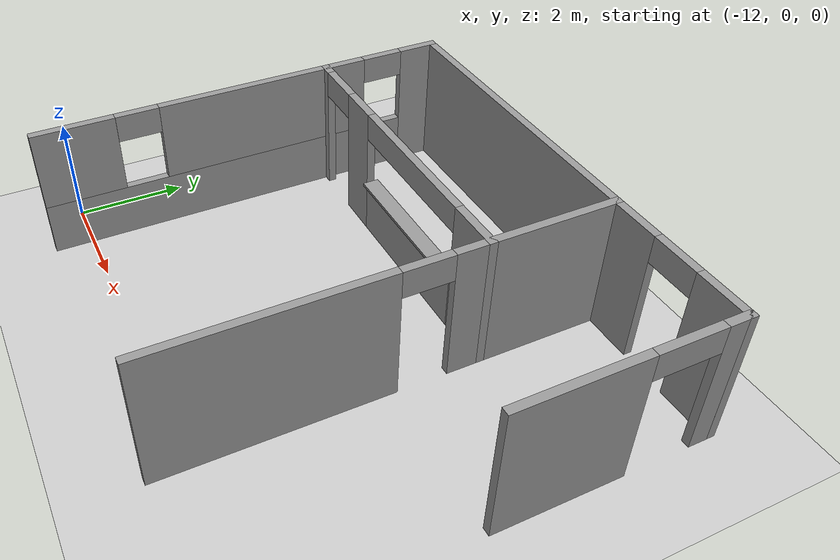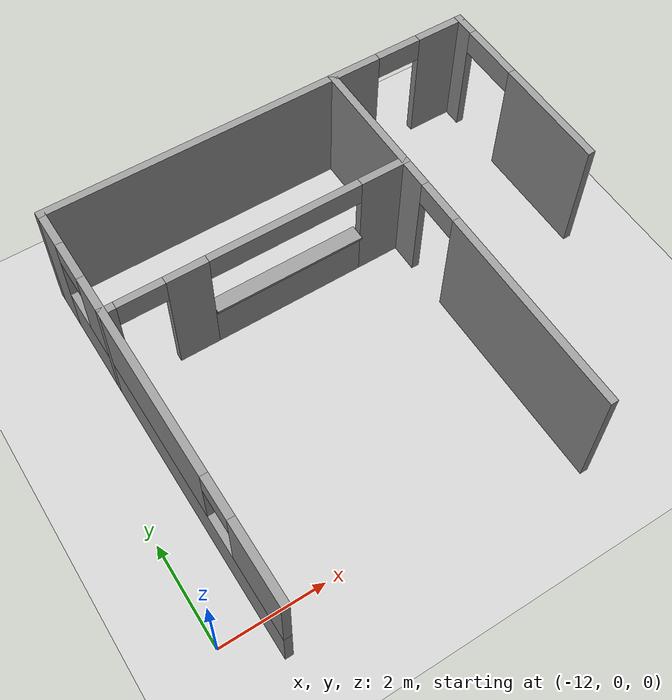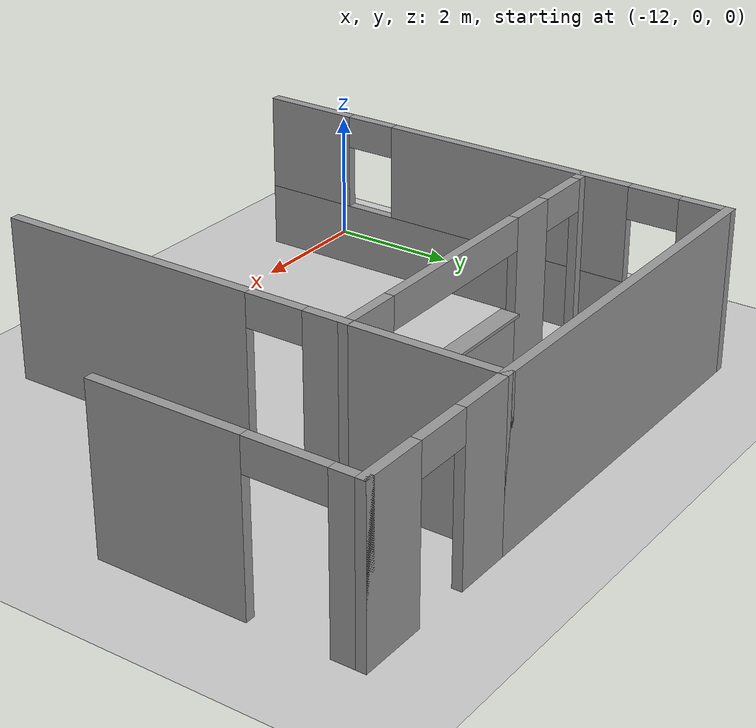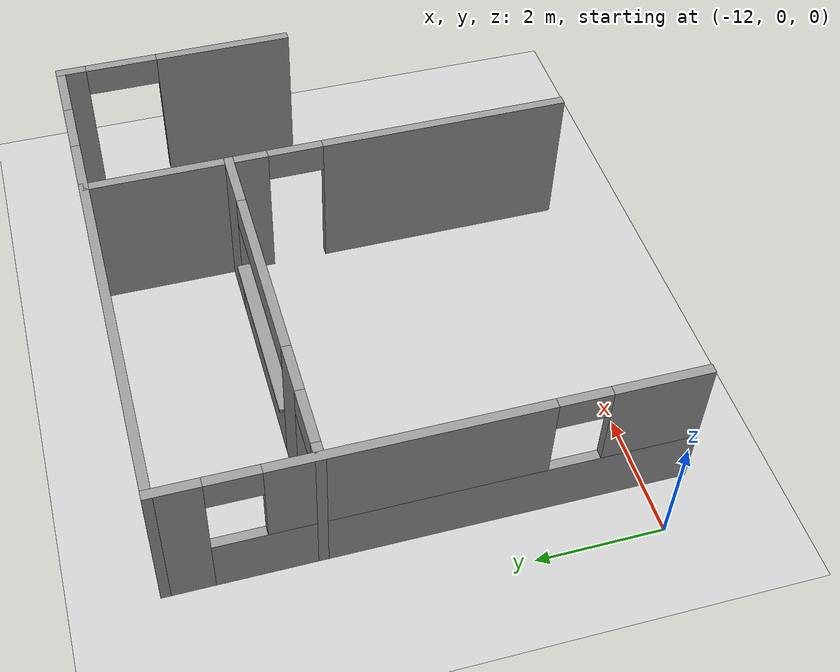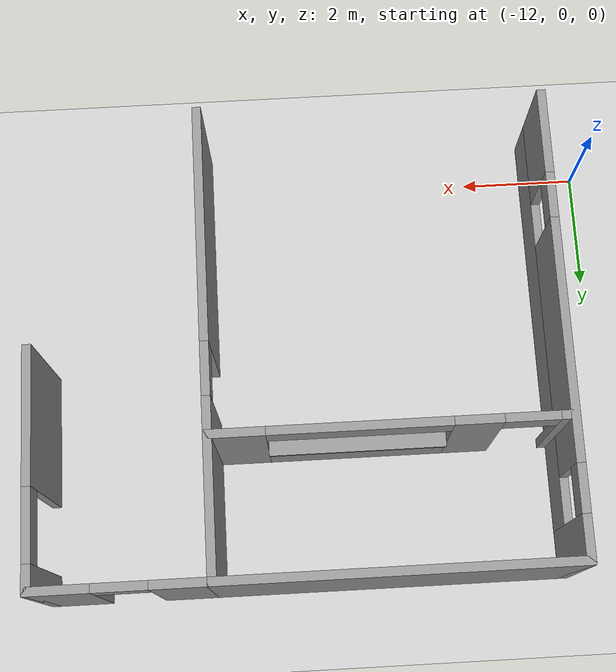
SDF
<sdf version="1.6">
 <world name="default">
  <model name="ground_plane">
   <static>1</static>
   <link name="link">
    <collision name="collision">
     <geometry><plane><normal>0 0 1</normal><size>100 100</size></plane></geometry>
     <surface><friction><ode><mu>100</mu><mu2>50</mu2></ode></friction></surface>
    </collision>
    <visual name="visual">
     <cast_shadows>0</cast_shadows>
     <geometry><plane><normal>0 0 1</normal><size>100 100</size></plane></geometry>
     <material>
      <script><uri>file://media/materials/scripts/gazebo.material</uri><name>Gazebo/Grey</name></script>
     </material>
    </visual>
   </link>
  </model>
  <model name="hospital_v1">
   <link name="Wall_0">
    <pose>-8.2 7.275 0 0 -0 0</pose>
    <visual name="Wall_0_Visual">
     <pose>0 0 1.25 0 -0 0</pose>
     <geometry><box><size>6 0.15 2.5</size></box></geometry>
     <material>
      <script><uri>file://media/materials/scripts/gazebo.material</uri><name>Gazebo/Grey</name></script>
      <ambient>1 1 1 1</ambient>
     </material>
     <meta><layer>0</layer></meta>
    </visual>
    <collision name="Wall_0_Collision">
     <pose>0 0 1.25 0 -0 0</pose>
     <geometry><box><size>6 0.15 2.5</size></box></geometry>
     <surface>
      <friction>
       <ode><mu>1</mu><mu2>1</mu2><fdir1>0 0 0</fdir1><slip1>0</slip1><slip2>0</slip2></ode>
       <torsional>
        <coefficient>1</coefficient>
        <patch_radius>0</patch_radius>
        <surface_radius>0</surface_radius>
        <use_patch_radius>1</use_patch_radius>
        <ode><slip>0</slip></ode>
       </torsional>
      </friction>
      <bounce><restitution_coefficient>0</restitution_coefficient><threshold>1e+06</threshold></bounce>
      <contact>
       <collide_without_contact>0</collide_without_contact>
       <collide_without_contact_bitmask>1</collide_without_contact_bitmask>
       <collide_bitmask>1</collide_bitmask>
       <ode>
        <soft_cfm>0</soft_cfm>
        <soft_erp>0.2</soft_erp>
        <kp>1e+13</kp>
        <kd>1</kd>
        <max_vel>0.01</max_vel>
        <min_depth>0</min_depth>
       </ode>
       <bullet>
        <split_impulse>1</split_impulse>
        <split_impulse_penetration_threshold>-0.01</split_impulse_penetration_threshold>
        <soft_cfm>0</soft_cfm>
        <soft_erp>0.2</soft_erp>
        <kp>1e+13</kp>
        <kd>1</kd>
       </bullet>
      </contact>
     </surface>
    </collision>
   </link>
   <link name="Wall_0_clone">
    <pose>-8.2 4.975 0 0 -0 0</pose>
    <inertial>
     <mass>1</mass>
     <inertia><ixx>1</ixx><ixy>0</ixy><ixz>0</ixz><iyy>1</iyy><iyz>0</iyz><izz>1</izz></inertia>
    </inertial>
    <visual name="ModelPreview_4::Wall_0_clone::visual_1">
     <pose>0.5 0 0.5 0 -0 0</pose>
     <geometry><box><size>3 0.15 1</size></box></geometry>
     <material>
      <script><uri>file://media/materials/scripts/gazebo.material</uri><name>Gazebo/Grey</name></script>
      <ambient>1 1 1 1</ambient>
      <shader type="vertex"><normal_map>__default__</normal_map></shader>
      <diffuse>0.7 0.7 0.7 1</diffuse>
      <specular>0.01 0.01 0.01 1</specular>
      <emissive>0 0 0 1</emissive>
     </material>
     <meta><layer>0</layer></meta>
    </visual>
    <visual name="ModelPreview_10::Wall_0_clone::visual_6">
     <pose>0.5 0 1.025 0 -0 0</pose>
     <geometry><box><size>3 0.3 0.05</size></box></geometry>
     <material>
      <script><uri>file://media/materials/scripts/gazebo.material</uri><name>Gazebo/Grey</name></script>
      <ambient>1 1 1 1</ambient>
      <shader type="vertex"><normal_map>__default__</normal_map></shader>
      <diffuse>0.7 0.7 0.7 1</diffuse>
      <specular>0.01 0.01 0.01 1</specular>
      <emissive>0 0 0 1</emissive>
     </material>
     <meta><layer>0</layer></meta>
    </visual>
    <visual name="ModelPreview_4::Wall_0_clone::visual_3">
     <pose>-1.4 0 1.25 0 -0 0</pose>
     <geometry><box><size>0.8 0.15 2.5</size></box></geometry>
     <material>
      <script><uri>file://media/materials/scripts/gazebo.material</uri><name>Gazebo/Grey</name></script>
      <ambient>1 1 1 1</ambient>
      <shader type="vertex"><normal_map>__default__</normal_map></shader>
      <diffuse>0.7 0.7 0.7 1</diffuse>
      <specular>0.01 0.01 0.01 1</specular>
      <emissive>0 0 0 1</emissive>
     </material>
     <meta><layer>0</layer></meta>
    </visual>
    <visual name="ModelPreview_4::Wall_0_clone::visual_4">
     <pose>-2.25 0 2.25 0 -0 0</pose>
     <geometry><box><size>0.9 0.15 0.5</size></box></geometry>
     <material>
      <script><uri>file://media/materials/scripts/gazebo.material</uri><name>Gazebo/Grey</name></script>
      <ambient>1 1 1 1</ambient>
      <shader type="vertex"><normal_map>__default__</normal_map></shader>
      <diffuse>0.7 0.7 0.7 1</diffuse>
      <specular>0.01 0.01 0.01 1</specular>
      <emissive>0 0 0 1</emissive>
     </material>
     <meta><layer>0</layer></meta>
    </visual>
    <visual name="ModelPreview_4::Wall_0_clone::visual_5">
     <pose>-2.85 0 1.25 0 -0 0</pose>
     <geometry><box><size>0.3 0.15 2.5</size></box></geometry>
     <material>
      <script><uri>file://media/materials/scripts/gazebo.material</uri><name>Gazebo/Grey</name></script>
      <ambient>1 1 1 1</ambient>
      <shader type="vertex"><normal_map>__default__</normal_map></shader>
      <diffuse>0.7 0.7 0.7 1</diffuse>
      <specular>0.01 0.01 0.01 1</specular>
      <emissive>0 0 0 1</emissive>
     </material>
     <meta><layer>0</layer></meta>
    </visual>
    <visual name="ModelPreview_4::Wall_0_clone::visual_2">
     <pose>0.5 0 2.25 0 -0 0</pose>
     <geometry><box><size>3 0.15 0.5</size></box></geometry>
     <material>
      <script><uri>file://media/materials/scripts/gazebo.material</uri><name>Gazebo/Grey</name></script>
      <ambient>1 1 1 1</ambient>
      <shader type="vertex"><normal_map>__default__</normal_map></shader>
      <diffuse>0.7 0.7 0.7 1</diffuse>
      <specular>0.01 0.01 0.01 1</specular>
      <emissive>0 0 0 1</emissive>
     </material>
     <meta><layer>0</layer></meta>
    </visual>
    <visual name="Wall_0_Visual">
     <pose>2.5 0 1.25 0 -0 0</pose>
     <geometry><box><size>1 0.15 2.5</size></box></geometry>
     <material>
      <script><uri>file://media/materials/scripts/gazebo.material</uri><name>Gazebo/Grey</name></script>
      <ambient>1 1 1 1</ambient>
      <shader type="vertex"><normal_map>__default__</normal_map></shader>
      <diffuse>0.7 0.7 0.7 1</diffuse>
      <specular>0.01 0.01 0.01 1</specular>
      <emissive>0 0 0 1</emissive>
     </material>
     <meta><layer>0</layer></meta>
    </visual>
    <collision name="collision_3">
     <pose>-1.4 0 1.25 0 -0 0</pose>
     <geometry><box><size>0.8 0.15 2.5</size></box></geometry>
     <surface>
      <friction>
       <ode><mu>1</mu><mu2>1</mu2><fdir1>0 0 0</fdir1><slip1>0</slip1><slip2>0</slip2></ode>
       <torsional>
        <coefficient>1</coefficient>
        <patch_radius>0</patch_radius>
        <surface_radius>0</surface_radius>
        <use_patch_radius>1</use_patch_radius>
        <ode><slip>0</slip></ode>
       </torsional>
      </friction>
      <bounce><restitution_coefficient>0</restitution_coefficient><threshold>1e+06</threshold></bounce>
      <contact>
       <collide_without_contact>0</collide_without_contact>
       <collide_without_contact_bitmask>1</collide_without_contact_bitmask>
       <collide_bitmask>1</collide_bitmask>
       <ode>
        <soft_cfm>0</soft_cfm>
        <soft_erp>0.2</soft_erp>
        <kp>1e+13</kp>
        <kd>1</kd>
        <max_vel>0.01</max_vel>
        <min_depth>0</min_depth>
       </ode>
       <bullet>
        <split_impulse>1</split_impulse>
        <split_impulse_penetration_threshold>-0.01</split_impulse_penetration_threshold>
        <soft_cfm>0</soft_cfm>
        <soft_erp>0.2</soft_erp>
        <kp>1e+13</kp>
        <kd>1</kd>
       </bullet>
      </contact>
     </surface>
    </collision>
    <collision name="collision_1">
     <pose>0.5 0 0.5 0 -0 0</pose>
     <geometry><box><size>3 0.15 1</size></box></geometry>
     <surface>
      <friction>
       <ode><mu>1</mu><mu2>1</mu2><fdir1>0 0 0</fdir1><slip1>0</slip1><slip2>0</slip2></ode>
       <torsional>
        <coefficient>1</coefficient>
        <patch_radius>0</patch_radius>
        <surface_radius>0</surface_radius>
        <use_patch_radius>1</use_patch_radius>
        <ode><slip>0</slip></ode>
       </torsional>
      </friction>
      <bounce><restitution_coefficient>0</restitution_coefficient><threshold>1e+06</threshold></bounce>
      <contact>
       <collide_without_contact>0</collide_without_contact>
       <collide_without_contact_bitmask>1</collide_without_contact_bitmask>
       <collide_bitmask>1</collide_bitmask>
       <ode>
        <soft_cfm>0</soft_cfm>
        <soft_erp>0.2</soft_erp>
        <kp>1e+13</kp>
        <kd>1</kd>
        <max_vel>0.01</max_vel>
        <min_depth>0</min_depth>
       </ode>
       <bullet>
        <split_impulse>1</split_impulse>
        <split_impulse_penetration_threshold>-0.01</split_impulse_penetration_threshold>
        <soft_cfm>0</soft_cfm>
        <soft_erp>0.2</soft_erp>
        <kp>1e+13</kp>
        <kd>1</kd>
       </bullet>
      </contact>
     </surface>
    </collision>
    <collision name="collision_4">
     <pose>-2.25 0 2.25 0 -0 0</pose>
     <geometry><box><size>0.9 0.15 0.5</size></box></geometry>
     <surface>
      <friction>
       <ode><mu>1</mu><mu2>1</mu2><fdir1>0 0 0</fdir1><slip1>0</slip1><slip2>0</slip2></ode>
       <torsional>
        <coefficient>1</coefficient>
        <patch_radius>0</patch_radius>
        <surface_radius>0</surface_radius>
        <use_patch_radius>1</use_patch_radius>
        <ode><slip>0</slip></ode>
       </torsional>
      </friction>
      <bounce><restitution_coefficient>0</restitution_coefficient><threshold>1e+06</threshold></bounce>
      <contact>
       <collide_without_contact>0</collide_without_contact>
       <collide_without_contact_bitmask>1</collide_without_contact_bitmask>
       <collide_bitmask>1</collide_bitmask>
       <ode>
        <soft_cfm>0</soft_cfm>
        <soft_erp>0.2</soft_erp>
        <kp>1e+13</kp>
        <kd>1</kd>
        <max_vel>0.01</max_vel>
        <min_depth>0</min_depth>
       </ode>
       <bullet>
        <split_impulse>1</split_impulse>
        <split_impulse_penetration_threshold>-0.01</split_impulse_penetration_threshold>
        <soft_cfm>0</soft_cfm>
        <soft_erp>0.2</soft_erp>
        <kp>1e+13</kp>
        <kd>1</kd>
       </bullet>
      </contact>
     </surface>
    </collision>
    <collision name="collision_5">
     <pose>-2.85 0 1.25 0 -0 0</pose>
     <geometry><box><size>0.3 0.15 2.5</size></box></geometry>
     <surface>
      <friction>
       <ode><mu>1</mu><mu2>1</mu2><fdir1>0 0 0</fdir1><slip1>0</slip1><slip2>0</slip2></ode>
       <torsional>
        <coefficient>1</coefficient>
        <patch_radius>0</patch_radius>
        <surface_radius>0</surface_radius>
        <use_patch_radius>1</use_patch_radius>
        <ode><slip>0</slip></ode>
       </torsional>
      </friction>
      <bounce><restitution_coefficient>0</restitution_coefficient><threshold>1e+06</threshold></bounce>
      <contact>
       <collide_without_contact>0</collide_without_contact>
       <collide_without_contact_bitmask>1</collide_without_contact_bitmask>
       <collide_bitmask>1</collide_bitmask>
       <ode>
        <soft_cfm>0</soft_cfm>
        <soft_erp>0.2</soft_erp>
        <kp>1e+13</kp>
        <kd>1</kd>
        <max_vel>0.01</max_vel>
        <min_depth>0</min_depth>
       </ode>
       <bullet>
        <split_impulse>1</split_impulse>
        <split_impulse_penetration_threshold>-0.01</split_impulse_penetration_threshold>
        <soft_cfm>0</soft_cfm>
        <soft_erp>0.2</soft_erp>
        <kp>1e+13</kp>
        <kd>1</kd>
       </bullet>
      </contact>
     </surface>
    </collision>
    <collision name="collision_2">
     <pose>0.5 0 2.25 0 -0 0</pose>
     <geometry><box><size>3 0.15 0.5</size></box></geometry>
     <surface>
      <friction>
       <ode><mu>1</mu><mu2>1</mu2><fdir1>0 0 0</fdir1><slip1>0</slip1><slip2>0</slip2></ode>
       <torsional>
        <coefficient>1</coefficient>
        <patch_radius>0</patch_radius>
        <surface_radius>0</surface_radius>
        <use_patch_radius>1</use_patch_radius>
        <ode><slip>0</slip></ode>
       </torsional>
      </friction>
      <bounce><restitution_coefficient>0</restitution_coefficient><threshold>1e+06</threshold></bounce>
      <contact>
       <collide_without_contact>0</collide_without_contact>
       <collide_without_contact_bitmask>1</collide_without_contact_bitmask>
       <collide_bitmask>1</collide_bitmask>
       <ode>
        <soft_cfm>0</soft_cfm>
        <soft_erp>0.2</soft_erp>
        <kp>1e+13</kp>
        <kd>1</kd>
        <max_vel>0.01</max_vel>
        <min_depth>0</min_depth>
       </ode>
       <bullet>
        <split_impulse>1</split_impulse>
        <split_impulse_penetration_threshold>-0.01</split_impulse_penetration_threshold>
        <soft_cfm>0</soft_cfm>
        <soft_erp>0.2</soft_erp>
        <kp>1e+13</kp>
        <kd>1</kd>
       </bullet>
      </contact>
     </surface>
    </collision>
    <collision name="collision_6">
     <pose>0.5 0 1.025 0 -0 0</pose>
     <geometry><box><size>3 0.3 0.05</size></box></geometry>
     <surface>
      <friction>
       <ode><mu>1</mu><mu2>1</mu2><fdir1>0 0 0</fdir1><slip1>0</slip1><slip2>0</slip2></ode>
       <torsional>
        <coefficient>1</coefficient>
        <patch_radius>0</patch_radius>
        <surface_radius>0</surface_radius>
        <use_patch_radius>1</use_patch_radius>
        <ode><slip>0</slip></ode>
       </torsional>
      </friction>
      <bounce><restitution_coefficient>0</restitution_coefficient><threshold>1e+06</threshold></bounce>
      <contact>
       <collide_without_contact>0</collide_without_contact>
       <collide_without_contact_bitmask>1</collide_without_contact_bitmask>
       <collide_bitmask>1</collide_bitmask>
       <ode>
        <soft_cfm>0</soft_cfm>
        <soft_erp>0.2</soft_erp>
        <kp>1e+13</kp>
        <kd>1</kd>
        <max_vel>0.01</max_vel>
        <min_depth>0</min_depth>
       </ode>
       <bullet>
        <split_impulse>1</split_impulse>
        <split_impulse_penetration_threshold>-0.01</split_impulse_penetration_threshold>
        <soft_cfm>0</soft_cfm>
        <soft_erp>0.2</soft_erp>
        <kp>1e+13</kp>
        <kd>1</kd>
       </bullet>
      </contact>
     </surface>
    </collision>
    <collision name="Wall_0_Collision">
     <pose>2.5 0 1.25 0 -0 0</pose>
     <geometry><box><size>1 0.15 2.5</size></box></geometry>
     <surface>
      <friction>
       <ode><mu>1</mu><mu2>1</mu2><fdir1>0 0 0</fdir1><slip1>0</slip1><slip2>0</slip2></ode>
       <torsional>
        <coefficient>1</coefficient>
        <patch_radius>0</patch_radius>
        <surface_radius>0</surface_radius>
        <use_patch_radius>1</use_patch_radius>
        <ode><slip>0</slip></ode>
       </torsional>
      </friction>
      <bounce><restitution_coefficient>0</restitution_coefficient><threshold>1e+06</threshold></bounce>
      <contact>
       <collide_without_contact>0</collide_without_contact>
       <collide_without_contact_bitmask>1</collide_without_contact_bitmask>
       <collide_bitmask>1</collide_bitmask>
       <ode>
        <soft_cfm>0</soft_cfm>
        <soft_erp>0.2</soft_erp>
        <kp>1e+13</kp>
        <kd>1</kd>
        <max_vel>0.01</max_vel>
        <min_depth>0</min_depth>
       </ode>
       <bullet>
        <split_impulse>1</split_impulse>
        <split_impulse_penetration_threshold>-0.01</split_impulse_penetration_threshold>
        <soft_cfm>0</soft_cfm>
        <soft_erp>0.2</soft_erp>
        <kp>1e+13</kp>
        <kd>1</kd>
       </bullet>
      </contact>
     </surface>
    </collision>
   </link>
   <link name="Wall_12">
    <pose>-2.425 5.35 0 0 -0 1.5708</pose>
    <visual name="Wall_12_Visual_0">
     <pose>-0.85 0 1.25 0 -0 0</pose>
     <geometry><box><size>2.3 0.15 2.5</size></box></geometry>
     <material>
      <script><uri>file://media/materials/scripts/gazebo.material</uri><name>Gazebo/Grey</name></script>
      <ambient>1 1 1 1</ambient>
     </material>
     <meta><layer>0</layer></meta>
    </visual>
    <visual name="Wall_12_Visual_2">
     <pose>0.9 0 2.25 0 -0 0</pose>
     <geometry><box><size>1.2 0.15 0.5</size></box></geometry>
     <material>
      <script><uri>file://media/materials/scripts/gazebo.material</uri><name>Gazebo/Grey</name></script>
      <ambient>1 1 1 1</ambient>
     </material>
     <meta><layer>0</layer></meta>
    </visual>
    <visual name="Wall_12_Visual_1">
     <pose>1.75 0 1.25 0 -0 0</pose>
     <geometry><box><size>0.5 0.15 2.5</size></box></geometry>
     <material>
      <script><uri>file://media/materials/scripts/gazebo.material</uri><name>Gazebo/Grey</name></script>
      <ambient>1 1 1 1</ambient>
     </material>
     <meta><layer>0</layer></meta>
    </visual>
    <collision name="Wall_12_Collision_1">
     <pose>1.75 0 1.25 0 -0 0</pose>
     <geometry><box><size>0.5 0.15 2.5</size></box></geometry>
     <surface>
      <friction>
       <ode><mu>1</mu><mu2>1</mu2><fdir1>0 0 0</fdir1><slip1>0</slip1><slip2>0</slip2></ode>
       <torsional>
        <coefficient>1</coefficient>
        <patch_radius>0</patch_radius>
        <surface_radius>0</surface_radius>
        <use_patch_radius>1</use_patch_radius>
        <ode><slip>0</slip></ode>
       </torsional>
      </friction>
      <bounce><restitution_coefficient>0</restitution_coefficient><threshold>1e+06</threshold></bounce>
      <contact>
       <collide_without_contact>0</collide_without_contact>
       <collide_without_contact_bitmask>1</collide_without_contact_bitmask>
       <collide_bitmask>1</collide_bitmask>
       <ode>
        <soft_cfm>0</soft_cfm>
        <soft_erp>0.2</soft_erp>
        <kp>1e+13</kp>
        <kd>1</kd>
        <max_vel>0.01</max_vel>
        <min_depth>0</min_depth>
       </ode>
       <bullet>
        <split_impulse>1</split_impulse>
        <split_impulse_penetration_threshold>-0.01</split_impulse_penetration_threshold>
        <soft_cfm>0</soft_cfm>
        <soft_erp>0.2</soft_erp>
        <kp>1e+13</kp>
        <kd>1</kd>
       </bullet>
      </contact>
     </surface>
    </collision>
    <collision name="Wall_12_Collision_2">
     <pose>0.9 0 2.25 0 -0 0</pose>
     <geometry><box><size>1.2 0.15 0.5</size></box></geometry>
     <surface>
      <friction>
       <ode><mu>1</mu><mu2>1</mu2><fdir1>0 0 0</fdir1><slip1>0</slip1><slip2>0</slip2></ode>
       <torsional>
        <coefficient>1</coefficient>
        <patch_radius>0</patch_radius>
        <surface_radius>0</surface_radius>
        <use_patch_radius>1</use_patch_radius>
        <ode><slip>0</slip></ode>
       </torsional>
      </friction>
      <bounce><restitution_coefficient>0</restitution_coefficient><threshold>1e+06</threshold></bounce>
      <contact>
       <collide_without_contact>0</collide_without_contact>
       <collide_without_contact_bitmask>1</collide_without_contact_bitmask>
       <collide_bitmask>1</collide_bitmask>
       <ode>
        <soft_cfm>0</soft_cfm>
        <soft_erp>0.2</soft_erp>
        <kp>1e+13</kp>
        <kd>1</kd>
        <max_vel>0.01</max_vel>
        <min_depth>0</min_depth>
       </ode>
       <bullet>
        <split_impulse>1</split_impulse>
        <split_impulse_penetration_threshold>-0.01</split_impulse_penetration_threshold>
        <soft_cfm>0</soft_cfm>
        <soft_erp>0.2</soft_erp>
        <kp>1e+13</kp>
        <kd>1</kd>
       </bullet>
      </contact>
     </surface>
    </collision>
    <collision name="Wall_12_Collision_0">
     <pose>-0.85 0 1.25 0 -0 0</pose>
     <geometry><box><size>2.3 0.15 2.5</size></box></geometry>
     <surface>
      <friction>
       <ode><mu>1</mu><mu2>1</mu2><fdir1>0 0 0</fdir1><slip1>0</slip1><slip2>0</slip2></ode>
       <torsional>
        <coefficient>1</coefficient>
        <patch_radius>0</patch_radius>
        <surface_radius>0</surface_radius>
        <use_patch_radius>1</use_patch_radius>
        <ode><slip>0</slip></ode>
       </torsional>
      </friction>
      <bounce><restitution_coefficient>0</restitution_coefficient><threshold>1e+06</threshold></bounce>
      <contact>
       <collide_without_contact>0</collide_without_contact>
       <collide_without_contact_bitmask>1</collide_without_contact_bitmask>
       <collide_bitmask>1</collide_bitmask>
       <ode>
        <soft_cfm>0</soft_cfm>
        <soft_erp>0.2</soft_erp>
        <kp>1e+13</kp>
        <kd>1</kd>
        <max_vel>0.01</max_vel>
        <min_depth>0</min_depth>
       </ode>
       <bullet>
        <split_impulse>1</split_impulse>
        <split_impulse_penetration_threshold>-0.01</split_impulse_penetration_threshold>
        <soft_cfm>0</soft_cfm>
        <soft_erp>0.2</soft_erp>
        <kp>1e+13</kp>
        <kd>1</kd>
       </bullet>
      </contact>
     </surface>
    </collision>
   </link>
   <link name="Wall_4">
    <pose>-11.125 3.35 0 0 0 -1.5708</pose>
    <inertial>
     <mass>1</mass>
     <inertia><ixx>1</ixx><ixy>0</ixy><ixz>0</ixz><iyy>1</iyy><iyz>0</iyz><izz>1</izz></inertia>
    </inertial>
    <visual name="Wall_4_Visual_4">
     <pose>-2.8 0 2.25 0 -0 0</pose>
     <geometry><box><size>0.8 0.15 0.5</size></box></geometry>
     <material>
      <script><uri>file://media/materials/scripts/gazebo.material</uri><name>Gazebo/Grey</name></script>
      <ambient>1 1 1 1</ambient>
      <shader type="vertex"><normal_map>__default__</normal_map></shader>
      <diffuse>0.7 0.7 0.7 1</diffuse>
      <specular>0.01 0.01 0.01 1</specular>
      <emissive>0 0 0 1</emissive>
     </material>
     <meta><layer>0</layer></meta>
    </visual>
    <visual name="Wall_4_Visual_0">
     <pose>-3.6 0 1.25 0 -0 0</pose>
     <geometry><box><size>0.8 0.15 2.5</size></box></geometry>
     <material>
      <script><uri>file://media/materials/scripts/gazebo.material</uri><name>Gazebo/Grey</name></script>
      <ambient>1 1 1 1</ambient>
      <shader type="vertex"><normal_map>__default__</normal_map></shader>
      <diffuse>0.7 0.7 0.7 1</diffuse>
      <specular>0.01 0.01 0.01 1</specular>
      <emissive>0 0 0 1</emissive>
     </material>
     <meta><layer>0</layer></meta>
    </visual>
    <visual name="Wall_4_Visual_3">
     <pose>3.25 0 1.75 0 -0 0</pose>
     <geometry><box><size>1.5 0.15 1.5</size></box></geometry>
     <material>
      <script><uri>file://media/materials/scripts/gazebo.material</uri><name>Gazebo/Grey</name></script>
      <ambient>1 1 1 1</ambient>
      <shader type="vertex"><normal_map>__default__</normal_map></shader>
      <diffuse>0.7 0.7 0.7 1</diffuse>
      <specular>0.01 0.01 0.01 1</specular>
      <emissive>0 0 0 1</emissive>
     </material>
     <meta><layer>0</layer></meta>
    </visual>
    <visual name="Wall_4_Visual_1">
     <pose>0.4 0 0.5 0 -0 0</pose>
     <geometry><box><size>7.2 0.15 1</size></box></geometry>
     <material>
      <script><uri>file://media/materials/scripts/gazebo.material</uri><name>Gazebo/Grey</name></script>
      <ambient>1 1 1 1</ambient>
      <shader type="vertex"><normal_map>__default__</normal_map></shader>
      <diffuse>0.7 0.7 0.7 1</diffuse>
      <specular>0.01 0.01 0.01 1</specular>
      <emissive>0 0 0 1</emissive>
     </material>
     <meta><layer>0</layer></meta>
    </visual>
    <visual name="Wall_4_Visual_2">
     <pose>-0.35 0 1.75 0 -0 0</pose>
     <geometry><box><size>4.1 0.15 1.5</size></box></geometry>
     <material>
      <script><uri>file://media/materials/scripts/gazebo.material</uri><name>Gazebo/Grey</name></script>
      <ambient>1 1 1 1</ambient>
      <shader type="vertex"><normal_map>__default__</normal_map></shader>
      <diffuse>0.7 0.7 0.7 1</diffuse>
      <specular>0.01 0.01 0.01 1</specular>
      <emissive>0 0 0 1</emissive>
     </material>
     <meta><layer>0</layer></meta>
    </visual>
    <visual name="Wall_4_Visual_5">
     <pose>2.1 0 2.25 0 -0 0</pose>
     <geometry><box><size>0.8 0.15 0.5</size></box></geometry>
     <material>
      <script><uri>file://media/materials/scripts/gazebo.material</uri><name>Gazebo/Grey</name></script>
      <ambient>1 1 1 1</ambient>
      <shader type="vertex"><normal_map>__default__</normal_map></shader>
      <diffuse>0.7 0.7 0.7 1</diffuse>
      <specular>0.01 0.01 0.01 1</specular>
      <emissive>0 0 0 1</emissive>
     </material>
     <meta><layer>0</layer></meta>
    </visual>
    <collision name="Wall_4_Collision_3">
     <pose>3.25 0 1.75 0 -0 0</pose>
     <geometry><box><size>1.5 0.15 1.5</size></box></geometry>
     <surface>
      <friction>
       <ode><mu>1</mu><mu2>1</mu2><fdir1>0 0 0</fdir1><slip1>0</slip1><slip2>0</slip2></ode>
       <torsional>
        <coefficient>1</coefficient>
        <patch_radius>0</patch_radius>
        <surface_radius>0</surface_radius>
        <use_patch_radius>1</use_patch_radius>
        <ode><slip>0</slip></ode>
       </torsional>
      </friction>
      <bounce><restitution_coefficient>0</restitution_coefficient><threshold>1e+06</threshold></bounce>
      <contact>
       <collide_without_contact>0</collide_without_contact>
       <collide_without_contact_bitmask>1</collide_without_contact_bitmask>
       <collide_bitmask>1</collide_bitmask>
       <ode>
        <soft_cfm>0</soft_cfm>
        <soft_erp>0.2</soft_erp>
        <kp>1e+13</kp>
        <kd>1</kd>
        <max_vel>0.01</max_vel>
        <min_depth>0</min_depth>
       </ode>
       <bullet>
        <split_impulse>1</split_impulse>
        <split_impulse_penetration_threshold>-0.01</split_impulse_penetration_threshold>
        <soft_cfm>0</soft_cfm>
        <soft_erp>0.2</soft_erp>
        <kp>1e+13</kp>
        <kd>1</kd>
       </bullet>
      </contact>
     </surface>
    </collision>
    <collision name="Wall_4_Collision_4">
     <pose>-2.8 0 2.25 0 -0 0</pose>
     <geometry><box><size>0.8 0.15 0.5</size></box></geometry>
     <surface>
      <friction>
       <ode><mu>1</mu><mu2>1</mu2><fdir1>0 0 0</fdir1><slip1>0</slip1><slip2>0</slip2></ode>
       <torsional>
        <coefficient>1</coefficient>
        <patch_radius>0</patch_radius>
        <surface_radius>0</surface_radius>
        <use_patch_radius>1</use_patch_radius>
        <ode><slip>0</slip></ode>
       </torsional>
      </friction>
      <bounce><restitution_coefficient>0</restitution_coefficient><threshold>1e+06</threshold></bounce>
      <contact>
       <collide_without_contact>0</collide_without_contact>
       <collide_without_contact_bitmask>1</collide_without_contact_bitmask>
       <collide_bitmask>1</collide_bitmask>
       <ode>
        <soft_cfm>0</soft_cfm>
        <soft_erp>0.2</soft_erp>
        <kp>1e+13</kp>
        <kd>1</kd>
        <max_vel>0.01</max_vel>
        <min_depth>0</min_depth>
       </ode>
       <bullet>
        <split_impulse>1</split_impulse>
        <split_impulse_penetration_threshold>-0.01</split_impulse_penetration_threshold>
        <soft_cfm>0</soft_cfm>
        <soft_erp>0.2</soft_erp>
        <kp>1e+13</kp>
        <kd>1</kd>
       </bullet>
      </contact>
     </surface>
    </collision>
    <collision name="Wall_4_Collision_0">
     <pose>-3.6 0 1.25 0 -0 0</pose>
     <geometry><box><size>0.8 0.15 2.5</size></box></geometry>
     <surface>
      <friction>
       <ode><mu>1</mu><mu2>1</mu2><fdir1>0 0 0</fdir1><slip1>0</slip1><slip2>0</slip2></ode>
       <torsional>
        <coefficient>1</coefficient>
        <patch_radius>0</patch_radius>
        <surface_radius>0</surface_radius>
        <use_patch_radius>1</use_patch_radius>
        <ode><slip>0</slip></ode>
       </torsional>
      </friction>
      <bounce><restitution_coefficient>0</restitution_coefficient><threshold>1e+06</threshold></bounce>
      <contact>
       <collide_without_contact>0</collide_without_contact>
       <collide_without_contact_bitmask>1</collide_without_contact_bitmask>
       <collide_bitmask>1</collide_bitmask>
       <ode>
        <soft_cfm>0</soft_cfm>
        <soft_erp>0.2</soft_erp>
        <kp>1e+13</kp>
        <kd>1</kd>
        <max_vel>0.01</max_vel>
        <min_depth>0</min_depth>
       </ode>
       <bullet>
        <split_impulse>1</split_impulse>
        <split_impulse_penetration_threshold>-0.01</split_impulse_penetration_threshold>
        <soft_cfm>0</soft_cfm>
        <soft_erp>0.2</soft_erp>
        <kp>1e+13</kp>
        <kd>1</kd>
       </bullet>
      </contact>
     </surface>
    </collision>
    <collision name="Wall_4_Collision_1">
     <pose>0.4 0 0.5 0 -0 0</pose>
     <geometry><box><size>7.2 0.15 1</size></box></geometry>
     <surface>
      <friction>
       <ode><mu>1</mu><mu2>1</mu2><fdir1>0 0 0</fdir1><slip1>0</slip1><slip2>0</slip2></ode>
       <torsional>
        <coefficient>1</coefficient>
        <patch_radius>0</patch_radius>
        <surface_radius>0</surface_radius>
        <use_patch_radius>1</use_patch_radius>
        <ode><slip>0</slip></ode>
       </torsional>
      </friction>
      <bounce><restitution_coefficient>0</restitution_coefficient><threshold>1e+06</threshold></bounce>
      <contact>
       <collide_without_contact>0</collide_without_contact>
       <collide_without_contact_bitmask>1</collide_without_contact_bitmask>
       <collide_bitmask>1</collide_bitmask>
       <ode>
        <soft_cfm>0</soft_cfm>
        <soft_erp>0.2</soft_erp>
        <kp>1e+13</kp>
        <kd>1</kd>
        <max_vel>0.01</max_vel>
        <min_depth>0</min_depth>
       </ode>
       <bullet>
        <split_impulse>1</split_impulse>
        <split_impulse_penetration_threshold>-0.01</split_impulse_penetration_threshold>
        <soft_cfm>0</soft_cfm>
        <soft_erp>0.2</soft_erp>
        <kp>1e+13</kp>
        <kd>1</kd>
       </bullet>
      </contact>
     </surface>
    </collision>
    <collision name="Wall_4_Collision_5">
     <pose>2.1 0 2.25 0 -0 0</pose>
     <geometry><box><size>0.8 0.15 0.5</size></box></geometry>
     <surface>
      <friction>
       <ode><mu>1</mu><mu2>1</mu2><fdir1>0 0 0</fdir1><slip1>0</slip1><slip2>0</slip2></ode>
       <torsional>
        <coefficient>1</coefficient>
        <patch_radius>0</patch_radius>
        <surface_radius>0</surface_radius>
        <use_patch_radius>1</use_patch_radius>
        <ode><slip>0</slip></ode>
       </torsional>
      </friction>
      <bounce><restitution_coefficient>0</restitution_coefficient><threshold>1e+06</threshold></bounce>
      <contact>
       <collide_without_contact>0</collide_without_contact>
       <collide_without_contact_bitmask>1</collide_without_contact_bitmask>
       <collide_bitmask>1</collide_bitmask>
       <ode>
        <soft_cfm>0</soft_cfm>
        <soft_erp>0.2</soft_erp>
        <kp>1e+13</kp>
        <kd>1</kd>
        <max_vel>0.01</max_vel>
        <min_depth>0</min_depth>
       </ode>
       <bullet>
        <split_impulse>1</split_impulse>
        <split_impulse_penetration_threshold>-0.01</split_impulse_penetration_threshold>
        <soft_cfm>0</soft_cfm>
        <soft_erp>0.2</soft_erp>
        <kp>1e+13</kp>
        <kd>1</kd>
       </bullet>
      </contact>
     </surface>
    </collision>
    <collision name="Wall_4_Collision_2">
     <pose>-0.35 0 1.75 0 -0 0</pose>
     <geometry><box><size>4.1 0.15 1.5</size></box></geometry>
     <surface>
      <friction>
       <ode><mu>1</mu><mu2>1</mu2><fdir1>0 0 0</fdir1><slip1>0</slip1><slip2>0</slip2></ode>
       <torsional>
        <coefficient>1</coefficient>
        <patch_radius>0</patch_radius>
        <surface_radius>0</surface_radius>
        <use_patch_radius>1</use_patch_radius>
        <ode><slip>0</slip></ode>
       </torsional>
      </friction>
      <bounce><restitution_coefficient>0</restitution_coefficient><threshold>1e+06</threshold></bounce>
      <contact>
       <collide_without_contact>0</collide_without_contact>
       <collide_without_contact_bitmask>1</collide_without_contact_bitmask>
       <collide_bitmask>1</collide_bitmask>
       <ode>
        <soft_cfm>0</soft_cfm>
        <soft_erp>0.2</soft_erp>
        <kp>1e+13</kp>
        <kd>1</kd>
        <max_vel>0.01</max_vel>
        <min_depth>0</min_depth>
       </ode>
       <bullet>
        <split_impulse>1</split_impulse>
        <split_impulse_penetration_threshold>-0.01</split_impulse_penetration_threshold>
        <soft_cfm>0</soft_cfm>
        <soft_erp>0.2</soft_erp>
        <kp>1e+13</kp>
        <kd>1</kd>
       </bullet>
      </contact>
     </surface>
    </collision>
   </link>
   <link name="Wall_6">
    <pose>-5.275 3.35 0 0 -0 1.5708</pose>
    <inertial>
     <mass>1</mass>
     <inertia><ixx>1</ixx><ixy>0</ixy><ixz>0</ixz><iyy>1</iyy><iyz>0</iyz><izz>1</izz></inertia>
    </inertial>
    <visual name="ModelPreview_13::Wall_6::visual_2">
     <pose>-1.95 0 1.25 0 -0 0</pose>
     <geometry><box><size>4.1 0.15 2.5</size></box></geometry>
     <material>
      <script><uri>file://media/materials/scripts/gazebo.material</uri><name>Gazebo/Grey</name></script>
      <ambient>1 1 1 1</ambient>
      <shader type="vertex"><normal_map>__default__</normal_map></shader>
      <diffuse>0.7 0.7 0.7 1</diffuse>
      <specular>0.01 0.01 0.01 1</specular>
      <emissive>0 0 0 1</emissive>
     </material>
     <meta><layer>0</layer></meta>
    </visual>
    <visual name="Wall_6_Visual">
     <pose>2.5 0 1.25 0 -0 0</pose>
     <geometry><box><size>3 0.15 2.5</size></box></geometry>
     <material>
      <script><uri>file://media/materials/scripts/gazebo.material</uri><name>Gazebo/Grey</name></script>
      <ambient>1 1 1 1</ambient>
      <shader type="vertex"><normal_map>__default__</normal_map></shader>
      <diffuse>0.7 0.7 0.7 1</diffuse>
      <specular>0.01 0.01 0.01 1</specular>
      <emissive>0 0 0 1</emissive>
     </material>
     <meta><layer>0</layer></meta>
    </visual>
    <visual name="ModelPreview_13::Wall_6::visual_1">
     <pose>0.55 0 2.25 0 -0 0</pose>
     <geometry><box><size>0.9 0.15 0.5</size></box></geometry>
     <material>
      <script><uri>file://media/materials/scripts/gazebo.material</uri><name>Gazebo/Grey</name></script>
      <ambient>1 1 1 1</ambient>
      <shader type="vertex"><normal_map>__default__</normal_map></shader>
      <diffuse>0.7 0.7 0.7 1</diffuse>
      <specular>0.01 0.01 0.01 1</specular>
      <emissive>0 0 0 1</emissive>
     </material>
     <meta><layer>0</layer></meta>
    </visual>
    <collision name="collision_1">
     <pose>0.55 0 2.25 0 -0 0</pose>
     <geometry><box><size>0.9 0.15 0.5</size></box></geometry>
     <surface>
      <friction>
       <ode><mu>1</mu><mu2>1</mu2><fdir1>0 0 0</fdir1><slip1>0</slip1><slip2>0</slip2></ode>
       <torsional>
        <coefficient>1</coefficient>
        <patch_radius>0</patch_radius>
        <surface_radius>0</surface_radius>
        <use_patch_radius>1</use_patch_radius>
        <ode><slip>0</slip></ode>
       </torsional>
      </friction>
      <bounce><restitution_coefficient>0</restitution_coefficient><threshold>1e+06</threshold></bounce>
      <contact>
       <collide_without_contact>0</collide_without_contact>
       <collide_without_contact_bitmask>1</collide_without_contact_bitmask>
       <collide_bitmask>1</collide_bitmask>
       <ode>
        <soft_cfm>0</soft_cfm>
        <soft_erp>0.2</soft_erp>
        <kp>1e+13</kp>
        <kd>1</kd>
        <max_vel>0.01</max_vel>
        <min_depth>0</min_depth>
       </ode>
       <bullet>
        <split_impulse>1</split_impulse>
        <split_impulse_penetration_threshold>-0.01</split_impulse_penetration_threshold>
        <soft_cfm>0</soft_cfm>
        <soft_erp>0.2</soft_erp>
        <kp>1e+13</kp>
        <kd>1</kd>
       </bullet>
      </contact>
     </surface>
    </collision>
    <collision name="Wall_6_Collision">
     <pose>2.5 0 1.25 0 -0 0</pose>
     <geometry><box><size>3 0.15 2.5</size></box></geometry>
     <surface>
      <friction>
       <ode><mu>1</mu><mu2>1</mu2><fdir1>0 0 0</fdir1><slip1>0</slip1><slip2>0</slip2></ode>
       <torsional>
        <coefficient>1</coefficient>
        <patch_radius>0</patch_radius>
        <surface_radius>0</surface_radius>
        <use_patch_radius>1</use_patch_radius>
        <ode><slip>0</slip></ode>
       </torsional>
      </friction>
      <bounce><restitution_coefficient>0</restitution_coefficient><threshold>1e+06</threshold></bounce>
      <contact>
       <collide_without_contact>0</collide_without_contact>
       <collide_without_contact_bitmask>1</collide_without_contact_bitmask>
       <collide_bitmask>1</collide_bitmask>
       <ode>
        <soft_cfm>0</soft_cfm>
        <soft_erp>0.2</soft_erp>
        <kp>1e+13</kp>
        <kd>1</kd>
        <max_vel>0.01</max_vel>
        <min_depth>0</min_depth>
       </ode>
       <bullet>
        <split_impulse>1</split_impulse>
        <split_impulse_penetration_threshold>-0.01</split_impulse_penetration_threshold>
        <soft_cfm>0</soft_cfm>
        <soft_erp>0.2</soft_erp>
        <kp>1e+13</kp>
        <kd>1</kd>
       </bullet>
      </contact>
     </surface>
    </collision>
    <collision name="collision_2">
     <pose>-1.95 0 1.25 0 -0 0</pose>
     <geometry><box><size>4.1 0.15 2.5</size></box></geometry>
     <surface>
      <friction>
       <ode><mu>1</mu><mu2>1</mu2><fdir1>0 0 0</fdir1><slip1>0</slip1><slip2>0</slip2></ode>
       <torsional>
        <coefficient>1</coefficient>
        <patch_radius>0</patch_radius>
        <surface_radius>0</surface_radius>
        <use_patch_radius>1</use_patch_radius>
        <ode><slip>0</slip></ode>
       </torsional>
      </friction>
      <bounce><restitution_coefficient>0</restitution_coefficient><threshold>1e+06</threshold></bounce>
      <contact>
       <collide_without_contact>0</collide_without_contact>
       <collide_without_contact_bitmask>1</collide_without_contact_bitmask>
       <collide_bitmask>1</collide_bitmask>
       <ode>
        <soft_cfm>0</soft_cfm>
        <soft_erp>0.2</soft_erp>
        <kp>1e+13</kp>
        <kd>1</kd>
        <max_vel>0.01</max_vel>
        <min_depth>0</min_depth>
       </ode>
       <bullet>
        <split_impulse>1</split_impulse>
        <split_impulse_penetration_threshold>-0.01</split_impulse_penetration_threshold>
        <soft_cfm>0</soft_cfm>
        <soft_erp>0.2</soft_erp>
        <kp>1e+13</kp>
        <kd>1</kd>
       </bullet>
      </contact>
     </surface>
    </collision>
   </link>
   <link name="Wall_8">
    <pose>-3.85 7.275 0 0 -0 0</pose>
    <visual name="Wall_8_Visual_1">
     <pose>0.975 0 1.25 0 -0 0</pose>
     <geometry><box><size>1.05 0.15 2.5</size></box></geometry>
     <material>
      <script><uri>file://media/materials/scripts/gazebo.material</uri><name>Gazebo/Grey</name></script>
      <ambient>1 1 1 1</ambient>
     </material>
     <meta><layer>0</layer></meta>
    </visual>
    <visual name="Wall_8_Visual_2">
     <pose>0 0 2.25 0 -0 0</pose>
     <geometry><box><size>0.9 0.15 0.5</size></box></geometry>
     <material>
      <script><uri>file://media/materials/scripts/gazebo.material</uri><name>Gazebo/Grey</name></script>
      <ambient>1 1 1 1</ambient>
     </material>
     <meta><layer>0</layer></meta>
    </visual>
    <visual name="Wall_8_Visual_0">
     <pose>-0.975 0 1.25 0 -0 0</pose>
     <geometry><box><size>1.05 0.15 2.5</size></box></geometry>
     <material>
      <script><uri>file://media/materials/scripts/gazebo.material</uri><name>Gazebo/Grey</name></script>
      <ambient>1 1 1 1</ambient>
     </material>
     <meta><layer>0</layer></meta>
    </visual>
    <collision name="Wall_8_Collision_0">
     <pose>-0.975 0 1.25 0 -0 0</pose>
     <geometry><box><size>1.05 0.15 2.5</size></box></geometry>
     <surface>
      <friction>
       <ode><mu>1</mu><mu2>1</mu2><fdir1>0 0 0</fdir1><slip1>0</slip1><slip2>0</slip2></ode>
       <torsional>
        <coefficient>1</coefficient>
        <patch_radius>0</patch_radius>
        <surface_radius>0</surface_radius>
        <use_patch_radius>1</use_patch_radius>
        <ode><slip>0</slip></ode>
       </torsional>
      </friction>
      <bounce><restitution_coefficient>0</restitution_coefficient><threshold>1e+06</threshold></bounce>
      <contact>
       <collide_without_contact>0</collide_without_contact>
       <collide_without_contact_bitmask>1</collide_without_contact_bitmask>
       <collide_bitmask>1</collide_bitmask>
       <ode>
        <soft_cfm>0</soft_cfm>
        <soft_erp>0.2</soft_erp>
        <kp>1e+13</kp>
        <kd>1</kd>
        <max_vel>0.01</max_vel>
        <min_depth>0</min_depth>
       </ode>
       <bullet>
        <split_impulse>1</split_impulse>
        <split_impulse_penetration_threshold>-0.01</split_impulse_penetration_threshold>
        <soft_cfm>0</soft_cfm>
        <soft_erp>0.2</soft_erp>
        <kp>1e+13</kp>
        <kd>1</kd>
       </bullet>
      </contact>
     </surface>
    </collision>
    <collision name="Wall_8_Collision_2">
     <pose>0 0 2.25 0 -0 0</pose>
     <geometry><box><size>0.9 0.15 0.5</size></box></geometry>
     <surface>
      <friction>
       <ode><mu>1</mu><mu2>1</mu2><fdir1>0 0 0</fdir1><slip1>0</slip1><slip2>0</slip2></ode>
       <torsional>
        <coefficient>1</coefficient>
        <patch_radius>0</patch_radius>
        <surface_radius>0</surface_radius>
        <use_patch_radius>1</use_patch_radius>
        <ode><slip>0</slip></ode>
       </torsional>
      </friction>
      <bounce><restitution_coefficient>0</restitution_coefficient><threshold>1e+06</threshold></bounce>
      <contact>
       <collide_without_contact>0</collide_without_contact>
       <collide_without_contact_bitmask>1</collide_without_contact_bitmask>
       <collide_bitmask>1</collide_bitmask>
       <ode>
        <soft_cfm>0</soft_cfm>
        <soft_erp>0.2</soft_erp>
        <kp>1e+13</kp>
        <kd>1</kd>
        <max_vel>0.01</max_vel>
        <min_depth>0</min_depth>
       </ode>
       <bullet>
        <split_impulse>1</split_impulse>
        <split_impulse_penetration_threshold>-0.01</split_impulse_penetration_threshold>
        <soft_cfm>0</soft_cfm>
        <soft_erp>0.2</soft_erp>
        <kp>1e+13</kp>
        <kd>1</kd>
       </bullet>
      </contact>
     </surface>
    </collision>
    <collision name="Wall_8_Collision_1">
     <pose>0.975 0 1.25 0 -0 0</pose>
     <geometry><box><size>1.05 0.15 2.5</size></box></geometry>
     <surface>
      <friction>
       <ode><mu>1</mu><mu2>1</mu2><fdir1>0 0 0</fdir1><slip1>0</slip1><slip2>0</slip2></ode>
       <torsional>
        <coefficient>1</coefficient>
        <patch_radius>0</patch_radius>
        <surface_radius>0</surface_radius>
        <use_patch_radius>1</use_patch_radius>
        <ode><slip>0</slip></ode>
       </torsional>
      </friction>
      <bounce><restitution_coefficient>0</restitution_coefficient><threshold>1e+06</threshold></bounce>
      <contact>
       <collide_without_contact>0</collide_without_contact>
       <collide_without_contact_bitmask>1</collide_without_contact_bitmask>
       <collide_bitmask>1</collide_bitmask>
       <ode>
        <soft_cfm>0</soft_cfm>
        <soft_erp>0.2</soft_erp>
        <kp>1e+13</kp>
        <kd>1</kd>
        <max_vel>0.01</max_vel>
        <min_depth>0</min_depth>
       </ode>
       <bullet>
        <split_impulse>1</split_impulse>
        <split_impulse_penetration_threshold>-0.01</split_impulse_penetration_threshold>
        <soft_cfm>0</soft_cfm>
        <soft_erp>0.2</soft_erp>
        <kp>1e+13</kp>
        <kd>1</kd>
       </bullet>
      </contact>
     </surface>
    </collision>
   </link>
   <static>1</static>
   <pose>0.01191 -0.04531 0 0 -0 0</pose>
  </model>
 </world>
</sdf>
